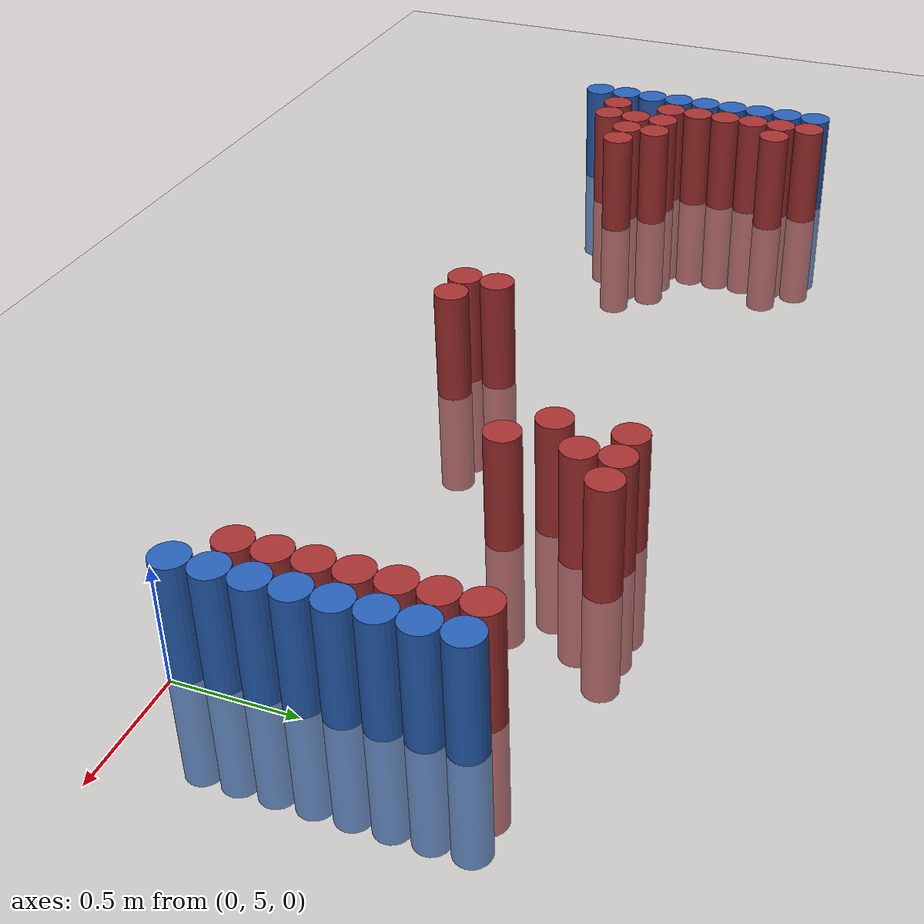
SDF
<sdf version="1.6">
 <world name="default">
  <model name="ground_plane">
   <static>1</static>
   <link name="link">
    <collision name="collision">
     <geometry><plane><normal>0 0 1</normal><size>100 100</size></plane></geometry>
     <surface><friction><ode><mu>100</mu><mu2>50</mu2></ode></friction></surface>
    </collision>
    <visual name="visual">
     <cast_shadows>0</cast_shadows>
     <geometry><plane><normal>0 0 1</normal><size>100 100</size></plane></geometry>
     <material>
      <script><uri>file://media/materials/scripts/gazebo.material</uri><name>Gazebo/Grey</name></script>
     </material>
    </visual>
   </link>
  </model>
  <model name="unit_cylinder_94">
   <static>1</static>
   <pose>-0.075000 5.025000 0.000000 0.000000 0.000000 0.000000</pose>
   <link name="link">
    <inertial>
     <mass>1</mass>
     <inertia><ixx>0.145833</ixx><ixy>0</ixy><ixz>0</ixz><iyy>0.145833</iyy><iyz>0</iyz><izz>0.125</izz></inertia>
    </inertial>
    <collision name="collision">
     <geometry><cylinder><radius>0.075000</radius><length>1</length></cylinder></geometry>
    </collision>
    <visual name="visual">
     <geometry><cylinder><radius>0.075000</radius><length>1</length></cylinder></geometry>
     <material>
      <ambient>0.152000 0.379000 0.720000 1</ambient>
      <diffuse>0.152000 0.379000 0.720000 1</diffuse>
     </material>
     <material>
      <script><name>Gazebo/Grey</name><uri>file://media/materials/scripts/gazebo.material</uri></script>
     </material>
    </visual>
   </link>
  </model>
  <model name="unit_cylinder_95">
   <static>1</static>
   <pose>-4.425000 5.025000 0.000000 0.000000 0.000000 0.000000</pose>
   <link name="link">
    <inertial>
     <mass>1</mass>
     <inertia><ixx>0.145833</ixx><ixy>0</ixy><ixz>0</ixz><iyy>0.145833</iyy><iyz>0</iyz><izz>0.125</izz></inertia>
    </inertial>
    <collision name="collision">
     <geometry><cylinder><radius>0.075000</radius><length>1</length></cylinder></geometry>
    </collision>
    <visual name="visual">
     <geometry><cylinder><radius>0.075000</radius><length>1</length></cylinder></geometry>
     <material>
      <ambient>0.152000 0.379000 0.720000 1</ambient>
      <diffuse>0.152000 0.379000 0.720000 1</diffuse>
     </material>
     <material>
      <script><name>Gazebo/Grey</name><uri>file://media/materials/scripts/gazebo.material</uri></script>
     </material>
    </visual>
   </link>
  </model>
  <model name="unit_cylinder_96">
   <static>1</static>
   <pose>-4.425000 5.175000 0.000000 0.000000 0.000000 0.000000</pose>
   <link name="link">
    <inertial>
     <mass>1</mass>
     <inertia><ixx>0.145833</ixx><ixy>0</ixy><ixz>0</ixz><iyy>0.145833</iyy><iyz>0</iyz><izz>0.125</izz></inertia>
    </inertial>
    <collision name="collision">
     <geometry><cylinder><radius>0.075000</radius><length>1</length></cylinder></geometry>
    </collision>
    <visual name="visual">
     <geometry><cylinder><radius>0.075000</radius><length>1</length></cylinder></geometry>
     <material>
      <ambient>0.152000 0.379000 0.720000 1</ambient>
      <diffuse>0.152000 0.379000 0.720000 1</diffuse>
     </material>
     <material>
      <script><name>Gazebo/Grey</name><uri>file://media/materials/scripts/gazebo.material</uri></script>
     </material>
    </visual>
   </link>
  </model>
  <model name="unit_cylinder_97">
   <static>1</static>
   <pose>-4.425000 5.325000 0.000000 0.000000 0.000000 0.000000</pose>
   <link name="link">
    <inertial>
     <mass>1</mass>
     <inertia><ixx>0.145833</ixx><ixy>0</ixy><ixz>0</ixz><iyy>0.145833</iyy><iyz>0</iyz><izz>0.125</izz></inertia>
    </inertial>
    <collision name="collision">
     <geometry><cylinder><radius>0.075000</radius><length>1</length></cylinder></geometry>
    </collision>
    <visual name="visual">
     <geometry><cylinder><radius>0.075000</radius><length>1</length></cylinder></geometry>
     <material>
      <ambient>0.152000 0.379000 0.720000 1</ambient>
      <diffuse>0.152000 0.379000 0.720000 1</diffuse>
     </material>
     <material>
      <script><name>Gazebo/Grey</name><uri>file://media/materials/scripts/gazebo.material</uri></script>
     </material>
    </visual>
   </link>
  </model>
  <model name="unit_cylinder_98">
   <static>1</static>
   <pose>-4.425000 5.475000 0.000000 0.000000 0.000000 0.000000</pose>
   <link name="link">
    <inertial>
     <mass>1</mass>
     <inertia><ixx>0.145833</ixx><ixy>0</ixy><ixz>0</ixz><iyy>0.145833</iyy><iyz>0</iyz><izz>0.125</izz></inertia>
    </inertial>
    <collision name="collision">
     <geometry><cylinder><radius>0.075000</radius><length>1</length></cylinder></geometry>
    </collision>
    <visual name="visual">
     <geometry><cylinder><radius>0.075000</radius><length>1</length></cylinder></geometry>
     <material>
      <ambient>0.152000 0.379000 0.720000 1</ambient>
      <diffuse>0.152000 0.379000 0.720000 1</diffuse>
     </material>
     <material>
      <script><name>Gazebo/Grey</name><uri>file://media/materials/scripts/gazebo.material</uri></script>
     </material>
    </visual>
   </link>
  </model>
  <model name="unit_cylinder_99">
   <static>1</static>
   <pose>-4.425000 5.625000 0.000000 0.000000 0.000000 0.000000</pose>
   <link name="link">
    <inertial>
     <mass>1</mass>
     <inertia><ixx>0.145833</ixx><ixy>0</ixy><ixz>0</ixz><iyy>0.145833</iyy><iyz>0</iyz><izz>0.125</izz></inertia>
    </inertial>
    <collision name="collision">
     <geometry><cylinder><radius>0.075000</radius><length>1</length></cylinder></geometry>
    </collision>
    <visual name="visual">
     <geometry><cylinder><radius>0.075000</radius><length>1</length></cylinder></geometry>
     <material>
      <ambient>0.152000 0.379000 0.720000 1</ambient>
      <diffuse>0.152000 0.379000 0.720000 1</diffuse>
     </material>
     <material>
      <script><name>Gazebo/Grey</name><uri>file://media/materials/scripts/gazebo.material</uri></script>
     </material>
    </visual>
   </link>
  </model>
  <model name="unit_cylinder_100">
   <static>1</static>
   <pose>-4.425000 5.775000 0.000000 0.000000 0.000000 0.000000</pose>
   <link name="link">
    <inertial>
     <mass>1</mass>
     <inertia><ixx>0.145833</ixx><ixy>0</ixy><ixz>0</ixz><iyy>0.145833</iyy><iyz>0</iyz><izz>0.125</izz></inertia>
    </inertial>
    <collision name="collision">
     <geometry><cylinder><radius>0.075000</radius><length>1</length></cylinder></geometry>
    </collision>
    <visual name="visual">
     <geometry><cylinder><radius>0.075000</radius><length>1</length></cylinder></geometry>
     <material>
      <ambient>0.152000 0.379000 0.720000 1</ambient>
      <diffuse>0.152000 0.379000 0.720000 1</diffuse>
     </material>
     <material>
      <script><name>Gazebo/Grey</name><uri>file://media/materials/scripts/gazebo.material</uri></script>
     </material>
    </visual>
   </link>
  </model>
  <model name="unit_cylinder_101">
   <static>1</static>
   <pose>-4.425000 5.925000 0.000000 0.000000 0.000000 0.000000</pose>
   <link name="link">
    <inertial>
     <mass>1</mass>
     <inertia><ixx>0.145833</ixx><ixy>0</ixy><ixz>0</ixz><iyy>0.145833</iyy><iyz>0</iyz><izz>0.125</izz></inertia>
    </inertial>
    <collision name="collision">
     <geometry><cylinder><radius>0.075000</radius><length>1</length></cylinder></geometry>
    </collision>
    <visual name="visual">
     <geometry><cylinder><radius>0.075000</radius><length>1</length></cylinder></geometry>
     <material>
      <ambient>0.152000 0.379000 0.720000 1</ambient>
      <diffuse>0.152000 0.379000 0.720000 1</diffuse>
     </material>
     <material>
      <script><name>Gazebo/Grey</name><uri>file://media/materials/scripts/gazebo.material</uri></script>
     </material>
    </visual>
   </link>
  </model>
  <model name="unit_cylinder_102">
   <static>1</static>
   <pose>-4.425000 6.075000 0.000000 0.000000 0.000000 0.000000</pose>
   <link name="link">
    <inertial>
     <mass>1</mass>
     <inertia><ixx>0.145833</ixx><ixy>0</ixy><ixz>0</ixz><iyy>0.145833</iyy><iyz>0</iyz><izz>0.125</izz></inertia>
    </inertial>
    <collision name="collision">
     <geometry><cylinder><radius>0.075000</radius><length>1</length></cylinder></geometry>
    </collision>
    <visual name="visual">
     <geometry><cylinder><radius>0.075000</radius><length>1</length></cylinder></geometry>
     <material>
      <ambient>0.152000 0.379000 0.720000 1</ambient>
      <diffuse>0.152000 0.379000 0.720000 1</diffuse>
     </material>
     <material>
      <script><name>Gazebo/Grey</name><uri>file://media/materials/scripts/gazebo.material</uri></script>
     </material>
    </visual>
   </link>
  </model>
  <model name="unit_cylinder_103">
   <static>1</static>
   <pose>-4.425000 6.225000 0.000000 0.000000 0.000000 0.000000</pose>
   <link name="link">
    <inertial>
     <mass>1</mass>
     <inertia><ixx>0.145833</ixx><ixy>0</ixy><ixz>0</ixz><iyy>0.145833</iyy><iyz>0</iyz><izz>0.125</izz></inertia>
    </inertial>
    <collision name="collision">
     <geometry><cylinder><radius>0.075000</radius><length>1</length></cylinder></geometry>
    </collision>
    <visual name="visual">
     <geometry><cylinder><radius>0.075000</radius><length>1</length></cylinder></geometry>
     <material>
      <ambient>0.152000 0.379000 0.720000 1</ambient>
      <diffuse>0.152000 0.379000 0.720000 1</diffuse>
     </material>
     <material>
      <script><name>Gazebo/Grey</name><uri>file://media/materials/scripts/gazebo.material</uri></script>
     </material>
    </visual>
   </link>
  </model>
  <model name="unit_cylinder_126">
   <static>1</static>
   <pose>-4.275000 5.175000 0.000000 0.000000 0.000000 0.000000</pose>
   <link name="link">
    <inertial>
     <mass>1</mass>
     <inertia><ixx>0.145833</ixx><ixy>0</ixy><ixz>0</ixz><iyy>0.145833</iyy><iyz>0</iyz><izz>0.125</izz></inertia>
    </inertial>
    <collision name="collision">
     <geometry><cylinder><radius>0.075000</radius><length>1</length></cylinder></geometry>
    </collision>
    <visual name="visual">
     <geometry><cylinder><radius>0.075000</radius><length>1</length></cylinder></geometry>
     <material>
      <ambient>0.648000 0.192000 0.192000 1</ambient>
      <diffuse>0.648000 0.192000 0.192000 1</diffuse>
     </material>
     <material>
      <script><name>Gazebo/Grey</name><uri>file://media/materials/scripts/gazebo.material</uri></script>
     </material>
    </visual>
   </link>
  </model>
  <model name="unit_cylinder_127">
   <static>1</static>
   <pose>-4.275000 5.475000 0.000000 0.000000 0.000000 0.000000</pose>
   <link name="link">
    <inertial>
     <mass>1</mass>
     <inertia><ixx>0.145833</ixx><ixy>0</ixy><ixz>0</ixz><iyy>0.145833</iyy><iyz>0</iyz><izz>0.125</izz></inertia>
    </inertial>
    <collision name="collision">
     <geometry><cylinder><radius>0.075000</radius><length>1</length></cylinder></geometry>
    </collision>
    <visual name="visual">
     <geometry><cylinder><radius>0.075000</radius><length>1</length></cylinder></geometry>
     <material>
      <ambient>0.648000 0.192000 0.192000 1</ambient>
      <diffuse>0.648000 0.192000 0.192000 1</diffuse>
     </material>
     <material>
      <script><name>Gazebo/Grey</name><uri>file://media/materials/scripts/gazebo.material</uri></script>
     </material>
    </visual>
   </link>
  </model>
  <model name="unit_cylinder_128">
   <static>1</static>
   <pose>-4.275000 5.625000 0.000000 0.000000 0.000000 0.000000</pose>
   <link name="link">
    <inertial>
     <mass>1</mass>
     <inertia><ixx>0.145833</ixx><ixy>0</ixy><ixz>0</ixz><iyy>0.145833</iyy><iyz>0</iyz><izz>0.125</izz></inertia>
    </inertial>
    <collision name="collision">
     <geometry><cylinder><radius>0.075000</radius><length>1</length></cylinder></geometry>
    </collision>
    <visual name="visual">
     <geometry><cylinder><radius>0.075000</radius><length>1</length></cylinder></geometry>
     <material>
      <ambient>0.648000 0.192000 0.192000 1</ambient>
      <diffuse>0.648000 0.192000 0.192000 1</diffuse>
     </material>
     <material>
      <script><name>Gazebo/Grey</name><uri>file://media/materials/scripts/gazebo.material</uri></script>
     </material>
    </visual>
   </link>
  </model>
  <model name="unit_cylinder_129">
   <static>1</static>
   <pose>-4.275000 5.775000 0.000000 0.000000 0.000000 0.000000</pose>
   <link name="link">
    <inertial>
     <mass>1</mass>
     <inertia><ixx>0.145833</ixx><ixy>0</ixy><ixz>0</ixz><iyy>0.145833</iyy><iyz>0</iyz><izz>0.125</izz></inertia>
    </inertial>
    <collision name="collision">
     <geometry><cylinder><radius>0.075000</radius><length>1</length></cylinder></geometry>
    </collision>
    <visual name="visual">
     <geometry><cylinder><radius>0.075000</radius><length>1</length></cylinder></geometry>
     <material>
      <ambient>0.648000 0.192000 0.192000 1</ambient>
      <diffuse>0.648000 0.192000 0.192000 1</diffuse>
     </material>
     <material>
      <script><name>Gazebo/Grey</name><uri>file://media/materials/scripts/gazebo.material</uri></script>
     </material>
    </visual>
   </link>
  </model>
  <model name="unit_cylinder_130">
   <static>1</static>
   <pose>-4.275000 5.925000 0.000000 0.000000 0.000000 0.000000</pose>
   <link name="link">
    <inertial>
     <mass>1</mass>
     <inertia><ixx>0.145833</ixx><ixy>0</ixy><ixz>0</ixz><iyy>0.145833</iyy><iyz>0</iyz><izz>0.125</izz></inertia>
    </inertial>
    <collision name="collision">
     <geometry><cylinder><radius>0.075000</radius><length>1</length></cylinder></geometry>
    </collision>
    <visual name="visual">
     <geometry><cylinder><radius>0.075000</radius><length>1</length></cylinder></geometry>
     <material>
      <ambient>0.648000 0.192000 0.192000 1</ambient>
      <diffuse>0.648000 0.192000 0.192000 1</diffuse>
     </material>
     <material>
      <script><name>Gazebo/Grey</name><uri>file://media/materials/scripts/gazebo.material</uri></script>
     </material>
    </visual>
   </link>
  </model>
  <model name="unit_cylinder_131">
   <static>1</static>
   <pose>-4.275000 6.075000 0.000000 0.000000 0.000000 0.000000</pose>
   <link name="link">
    <inertial>
     <mass>1</mass>
     <inertia><ixx>0.145833</ixx><ixy>0</ixy><ixz>0</ixz><iyy>0.145833</iyy><iyz>0</iyz><izz>0.125</izz></inertia>
    </inertial>
    <collision name="collision">
     <geometry><cylinder><radius>0.075000</radius><length>1</length></cylinder></geometry>
    </collision>
    <visual name="visual">
     <geometry><cylinder><radius>0.075000</radius><length>1</length></cylinder></geometry>
     <material>
      <ambient>0.648000 0.192000 0.192000 1</ambient>
      <diffuse>0.648000 0.192000 0.192000 1</diffuse>
     </material>
     <material>
      <script><name>Gazebo/Grey</name><uri>file://media/materials/scripts/gazebo.material</uri></script>
     </material>
    </visual>
   </link>
  </model>
  <model name="unit_cylinder_132">
   <static>1</static>
   <pose>-4.275000 6.225000 0.000000 0.000000 0.000000 0.000000</pose>
   <link name="link">
    <inertial>
     <mass>1</mass>
     <inertia><ixx>0.145833</ixx><ixy>0</ixy><ixz>0</ixz><iyy>0.145833</iyy><iyz>0</iyz><izz>0.125</izz></inertia>
    </inertial>
    <collision name="collision">
     <geometry><cylinder><radius>0.075000</radius><length>1</length></cylinder></geometry>
    </collision>
    <visual name="visual">
     <geometry><cylinder><radius>0.075000</radius><length>1</length></cylinder></geometry>
     <material>
      <ambient>0.648000 0.192000 0.192000 1</ambient>
      <diffuse>0.648000 0.192000 0.192000 1</diffuse>
     </material>
     <material>
      <script><name>Gazebo/Grey</name><uri>file://media/materials/scripts/gazebo.material</uri></script>
     </material>
    </visual>
   </link>
  </model>
  <model name="unit_cylinder_148">
   <static>1</static>
   <pose>-4.125000 5.175000 0.000000 0.000000 0.000000 0.000000</pose>
   <link name="link">
    <inertial>
     <mass>1</mass>
     <inertia><ixx>0.145833</ixx><ixy>0</ixy><ixz>0</ixz><iyy>0.145833</iyy><iyz>0</iyz><izz>0.125</izz></inertia>
    </inertial>
    <collision name="collision">
     <geometry><cylinder><radius>0.075000</radius><length>1</length></cylinder></geometry>
    </collision>
    <visual name="visual">
     <geometry><cylinder><radius>0.075000</radius><length>1</length></cylinder></geometry>
     <material>
      <ambient>0.648000 0.192000 0.192000 1</ambient>
      <diffuse>0.648000 0.192000 0.192000 1</diffuse>
     </material>
     <material>
      <script><name>Gazebo/Grey</name><uri>file://media/materials/scripts/gazebo.material</uri></script>
     </material>
    </visual>
   </link>
  </model>
  <model name="unit_cylinder_149">
   <static>1</static>
   <pose>-4.125000 5.325000 0.000000 0.000000 0.000000 0.000000</pose>
   <link name="link">
    <inertial>
     <mass>1</mass>
     <inertia><ixx>0.145833</ixx><ixy>0</ixy><ixz>0</ixz><iyy>0.145833</iyy><iyz>0</iyz><izz>0.125</izz></inertia>
    </inertial>
    <collision name="collision">
     <geometry><cylinder><radius>0.075000</radius><length>1</length></cylinder></geometry>
    </collision>
    <visual name="visual">
     <geometry><cylinder><radius>0.075000</radius><length>1</length></cylinder></geometry>
     <material>
      <ambient>0.648000 0.192000 0.192000 1</ambient>
      <diffuse>0.648000 0.192000 0.192000 1</diffuse>
     </material>
     <material>
      <script><name>Gazebo/Grey</name><uri>file://media/materials/scripts/gazebo.material</uri></script>
     </material>
    </visual>
   </link>
  </model>
  <model name="unit_cylinder_150">
   <static>1</static>
   <pose>-4.125000 5.475000 0.000000 0.000000 0.000000 0.000000</pose>
   <link name="link">
    <inertial>
     <mass>1</mass>
     <inertia><ixx>0.145833</ixx><ixy>0</ixy><ixz>0</ixz><iyy>0.145833</iyy><iyz>0</iyz><izz>0.125</izz></inertia>
    </inertial>
    <collision name="collision">
     <geometry><cylinder><radius>0.075000</radius><length>1</length></cylinder></geometry>
    </collision>
    <visual name="visual">
     <geometry><cylinder><radius>0.075000</radius><length>1</length></cylinder></geometry>
     <material>
      <ambient>0.648000 0.192000 0.192000 1</ambient>
      <diffuse>0.648000 0.192000 0.192000 1</diffuse>
     </material>
     <material>
      <script><name>Gazebo/Grey</name><uri>file://media/materials/scripts/gazebo.material</uri></script>
     </material>
    </visual>
   </link>
  </model>
  <model name="unit_cylinder_151">
   <static>1</static>
   <pose>-4.125000 6.075000 0.000000 0.000000 0.000000 0.000000</pose>
   <link name="link">
    <inertial>
     <mass>1</mass>
     <inertia><ixx>0.145833</ixx><ixy>0</ixy><ixz>0</ixz><iyy>0.145833</iyy><iyz>0</iyz><izz>0.125</izz></inertia>
    </inertial>
    <collision name="collision">
     <geometry><cylinder><radius>0.075000</radius><length>1</length></cylinder></geometry>
    </collision>
    <visual name="visual">
     <geometry><cylinder><radius>0.075000</radius><length>1</length></cylinder></geometry>
     <material>
      <ambient>0.648000 0.192000 0.192000 1</ambient>
      <diffuse>0.648000 0.192000 0.192000 1</diffuse>
     </material>
     <material>
      <script><name>Gazebo/Grey</name><uri>file://media/materials/scripts/gazebo.material</uri></script>
     </material>
    </visual>
   </link>
  </model>
  <model name="unit_cylinder_159">
   <static>1</static>
   <pose>-3.975000 5.325000 0.000000 0.000000 0.000000 0.000000</pose>
   <link name="link">
    <inertial>
     <mass>1</mass>
     <inertia><ixx>0.145833</ixx><ixy>0</ixy><ixz>0</ixz><iyy>0.145833</iyy><iyz>0</iyz><izz>0.125</izz></inertia>
    </inertial>
    <collision name="collision">
     <geometry><cylinder><radius>0.075000</radius><length>1</length></cylinder></geometry>
    </collision>
    <visual name="visual">
     <geometry><cylinder><radius>0.075000</radius><length>1</length></cylinder></geometry>
     <material>
      <ambient>0.648000 0.192000 0.192000 1</ambient>
      <diffuse>0.648000 0.192000 0.192000 1</diffuse>
     </material>
     <material>
      <script><name>Gazebo/Grey</name><uri>file://media/materials/scripts/gazebo.material</uri></script>
     </material>
    </visual>
   </link>
  </model>
  <model name="unit_cylinder_160">
   <static>1</static>
   <pose>-3.975000 5.475000 0.000000 0.000000 0.000000 0.000000</pose>
   <link name="link">
    <inertial>
     <mass>1</mass>
     <inertia><ixx>0.145833</ixx><ixy>0</ixy><ixz>0</ixz><iyy>0.145833</iyy><iyz>0</iyz><izz>0.125</izz></inertia>
    </inertial>
    <collision name="collision">
     <geometry><cylinder><radius>0.075000</radius><length>1</length></cylinder></geometry>
    </collision>
    <visual name="visual">
     <geometry><cylinder><radius>0.075000</radius><length>1</length></cylinder></geometry>
     <material>
      <ambient>0.648000 0.192000 0.192000 1</ambient>
      <diffuse>0.648000 0.192000 0.192000 1</diffuse>
     </material>
     <material>
      <script><name>Gazebo/Grey</name><uri>file://media/materials/scripts/gazebo.material</uri></script>
     </material>
    </visual>
   </link>
  </model>
  <model name="unit_cylinder_164">
   <static>1</static>
   <pose>-3.825000 5.325000 0.000000 0.000000 0.000000 0.000000</pose>
   <link name="link">
    <inertial>
     <mass>1</mass>
     <inertia><ixx>0.145833</ixx><ixy>0</ixy><ixz>0</ixz><iyy>0.145833</iyy><iyz>0</iyz><izz>0.125</izz></inertia>
    </inertial>
    <collision name="collision">
     <geometry><cylinder><radius>0.075000</radius><length>1</length></cylinder></geometry>
    </collision>
    <visual name="visual">
     <geometry><cylinder><radius>0.075000</radius><length>1</length></cylinder></geometry>
     <material>
      <ambient>0.648000 0.192000 0.192000 1</ambient>
      <diffuse>0.648000 0.192000 0.192000 1</diffuse>
     </material>
     <material>
      <script><name>Gazebo/Grey</name><uri>file://media/materials/scripts/gazebo.material</uri></script>
     </material>
    </visual>
   </link>
  </model>
  <model name="unit_cylinder_183">
   <static>1</static>
   <pose>-2.175000 5.175000 0.000000 0.000000 0.000000 0.000000</pose>
   <link name="link">
    <inertial>
     <mass>1</mass>
     <inertia><ixx>0.145833</ixx><ixy>0</ixy><ixz>0</ixz><iyy>0.145833</iyy><iyz>0</iyz><izz>0.125</izz></inertia>
    </inertial>
    <collision name="collision">
     <geometry><cylinder><radius>0.075000</radius><length>1</length></cylinder></geometry>
    </collision>
    <visual name="visual">
     <geometry><cylinder><radius>0.075000</radius><length>1</length></cylinder></geometry>
     <material>
      <ambient>0.648000 0.192000 0.192000 1</ambient>
      <diffuse>0.648000 0.192000 0.192000 1</diffuse>
     </material>
     <material>
      <script><name>Gazebo/Grey</name><uri>file://media/materials/scripts/gazebo.material</uri></script>
     </material>
    </visual>
   </link>
  </model>
  <model name="unit_cylinder_184">
   <static>1</static>
   <pose>-2.175000 5.325000 0.000000 0.000000 0.000000 0.000000</pose>
   <link name="link">
    <inertial>
     <mass>1</mass>
     <inertia><ixx>0.145833</ixx><ixy>0</ixy><ixz>0</ixz><iyy>0.145833</iyy><iyz>0</iyz><izz>0.125</izz></inertia>
    </inertial>
    <collision name="collision">
     <geometry><cylinder><radius>0.075000</radius><length>1</length></cylinder></geometry>
    </collision>
    <visual name="visual">
     <geometry><cylinder><radius>0.075000</radius><length>1</length></cylinder></geometry>
     <material>
      <ambient>0.648000 0.192000 0.192000 1</ambient>
      <diffuse>0.648000 0.192000 0.192000 1</diffuse>
     </material>
     <material>
      <script><name>Gazebo/Grey</name><uri>file://media/materials/scripts/gazebo.material</uri></script>
     </material>
    </visual>
   </link>
  </model>
  <model name="unit_cylinder_185">
   <static>1</static>
   <pose>-2.025000 5.175000 0.000000 0.000000 0.000000 0.000000</pose>
   <link name="link">
    <inertial>
     <mass>1</mass>
     <inertia><ixx>0.145833</ixx><ixy>0</ixy><ixz>0</ixz><iyy>0.145833</iyy><iyz>0</iyz><izz>0.125</izz></inertia>
    </inertial>
    <collision name="collision">
     <geometry><cylinder><radius>0.075000</radius><length>1</length></cylinder></geometry>
    </collision>
    <visual name="visual">
     <geometry><cylinder><radius>0.075000</radius><length>1</length></cylinder></geometry>
     <material>
      <ambient>0.648000 0.192000 0.192000 1</ambient>
      <diffuse>0.648000 0.192000 0.192000 1</diffuse>
     </material>
     <material>
      <script><name>Gazebo/Grey</name><uri>file://media/materials/scripts/gazebo.material</uri></script>
     </material>
    </visual>
   </link>
  </model>
  <model name="unit_cylinder_198">
   <static>1</static>
   <pose>-1.275000 5.925000 0.000000 0.000000 0.000000 0.000000</pose>
   <link name="link">
    <inertial>
     <mass>1</mass>
     <inertia><ixx>0.145833</ixx><ixy>0</ixy><ixz>0</ixz><iyy>0.145833</iyy><iyz>0</iyz><izz>0.125</izz></inertia>
    </inertial>
    <collision name="collision">
     <geometry><cylinder><radius>0.075000</radius><length>1</length></cylinder></geometry>
    </collision>
    <visual name="visual">
     <geometry><cylinder><radius>0.075000</radius><length>1</length></cylinder></geometry>
     <material>
      <ambient>0.648000 0.192000 0.192000 1</ambient>
      <diffuse>0.648000 0.192000 0.192000 1</diffuse>
     </material>
     <material>
      <script><name>Gazebo/Grey</name><uri>file://media/materials/scripts/gazebo.material</uri></script>
     </material>
    </visual>
   </link>
  </model>
  <model name="unit_cylinder_199">
   <static>1</static>
   <pose>-1.275000 6.225000 0.000000 0.000000 0.000000 0.000000</pose>
   <link name="link">
    <inertial>
     <mass>1</mass>
     <inertia><ixx>0.145833</ixx><ixy>0</ixy><ixz>0</ixz><iyy>0.145833</iyy><iyz>0</iyz><izz>0.125</izz></inertia>
    </inertial>
    <collision name="collision">
     <geometry><cylinder><radius>0.075000</radius><length>1</length></cylinder></geometry>
    </collision>
    <visual name="visual">
     <geometry><cylinder><radius>0.075000</radius><length>1</length></cylinder></geometry>
     <material>
      <ambient>0.648000 0.192000 0.192000 1</ambient>
      <diffuse>0.648000 0.192000 0.192000 1</diffuse>
     </material>
     <material>
      <script><name>Gazebo/Grey</name><uri>file://media/materials/scripts/gazebo.material</uri></script>
     </material>
    </visual>
   </link>
  </model>
  <model name="unit_cylinder_202">
   <static>1</static>
   <pose>-1.125000 5.775000 0.000000 0.000000 0.000000 0.000000</pose>
   <link name="link">
    <inertial>
     <mass>1</mass>
     <inertia><ixx>0.145833</ixx><ixy>0</ixy><ixz>0</ixz><iyy>0.145833</iyy><iyz>0</iyz><izz>0.125</izz></inertia>
    </inertial>
    <collision name="collision">
     <geometry><cylinder><radius>0.075000</radius><length>1</length></cylinder></geometry>
    </collision>
    <visual name="visual">
     <geometry><cylinder><radius>0.075000</radius><length>1</length></cylinder></geometry>
     <material>
      <ambient>0.648000 0.192000 0.192000 1</ambient>
      <diffuse>0.648000 0.192000 0.192000 1</diffuse>
     </material>
     <material>
      <script><name>Gazebo/Grey</name><uri>file://media/materials/scripts/gazebo.material</uri></script>
     </material>
    </visual>
   </link>
  </model>
  <model name="unit_cylinder_203">
   <static>1</static>
   <pose>-1.125000 6.075000 0.000000 0.000000 0.000000 0.000000</pose>
   <link name="link">
    <inertial>
     <mass>1</mass>
     <inertia><ixx>0.145833</ixx><ixy>0</ixy><ixz>0</ixz><iyy>0.145833</iyy><iyz>0</iyz><izz>0.125</izz></inertia>
    </inertial>
    <collision name="collision">
     <geometry><cylinder><radius>0.075000</radius><length>1</length></cylinder></geometry>
    </collision>
    <visual name="visual">
     <geometry><cylinder><radius>0.075000</radius><length>1</length></cylinder></geometry>
     <material>
      <ambient>0.648000 0.192000 0.192000 1</ambient>
      <diffuse>0.648000 0.192000 0.192000 1</diffuse>
     </material>
     <material>
      <script><name>Gazebo/Grey</name><uri>file://media/materials/scripts/gazebo.material</uri></script>
     </material>
    </visual>
   </link>
  </model>
  <model name="unit_cylinder_204">
   <static>1</static>
   <pose>-1.125000 6.225000 0.000000 0.000000 0.000000 0.000000</pose>
   <link name="link">
    <inertial>
     <mass>1</mass>
     <inertia><ixx>0.145833</ixx><ixy>0</ixy><ixz>0</ixz><iyy>0.145833</iyy><iyz>0</iyz><izz>0.125</izz></inertia>
    </inertial>
    <collision name="collision">
     <geometry><cylinder><radius>0.075000</radius><length>1</length></cylinder></geometry>
    </collision>
    <visual name="visual">
     <geometry><cylinder><radius>0.075000</radius><length>1</length></cylinder></geometry>
     <material>
      <ambient>0.648000 0.192000 0.192000 1</ambient>
      <diffuse>0.648000 0.192000 0.192000 1</diffuse>
     </material>
     <material>
      <script><name>Gazebo/Grey</name><uri>file://media/materials/scripts/gazebo.material</uri></script>
     </material>
    </visual>
   </link>
  </model>
  <model name="unit_cylinder_209">
   <static>1</static>
   <pose>-0.975000 6.225000 0.000000 0.000000 0.000000 0.000000</pose>
   <link name="link">
    <inertial>
     <mass>1</mass>
     <inertia><ixx>0.145833</ixx><ixy>0</ixy><ixz>0</ixz><iyy>0.145833</iyy><iyz>0</iyz><izz>0.125</izz></inertia>
    </inertial>
    <collision name="collision">
     <geometry><cylinder><radius>0.075000</radius><length>1</length></cylinder></geometry>
    </collision>
    <visual name="visual">
     <geometry><cylinder><radius>0.075000</radius><length>1</length></cylinder></geometry>
     <material>
      <ambient>0.648000 0.192000 0.192000 1</ambient>
      <diffuse>0.648000 0.192000 0.192000 1</diffuse>
     </material>
     <material>
      <script><name>Gazebo/Grey</name><uri>file://media/materials/scripts/gazebo.material</uri></script>
     </material>
    </visual>
   </link>
  </model>
  <model name="unit_cylinder_235">
   <static>1</static>
   <pose>-0.225000 5.175000 0.000000 0.000000 0.000000 0.000000</pose>
   <link name="link">
    <inertial>
     <mass>1</mass>
     <inertia><ixx>0.145833</ixx><ixy>0</ixy><ixz>0</ixz><iyy>0.145833</iyy><iyz>0</iyz><izz>0.125</izz></inertia>
    </inertial>
    <collision name="collision">
     <geometry><cylinder><radius>0.075000</radius><length>1</length></cylinder></geometry>
    </collision>
    <visual name="visual">
     <geometry><cylinder><radius>0.075000</radius><length>1</length></cylinder></geometry>
     <material>
      <ambient>0.648000 0.192000 0.192000 1</ambient>
      <diffuse>0.648000 0.192000 0.192000 1</diffuse>
     </material>
     <material>
      <script><name>Gazebo/Grey</name><uri>file://media/materials/scripts/gazebo.material</uri></script>
     </material>
    </visual>
   </link>
  </model>
  <model name="unit_cylinder_236">
   <static>1</static>
   <pose>-0.225000 5.325000 0.000000 0.000000 0.000000 0.000000</pose>
   <link name="link">
    <inertial>
     <mass>1</mass>
     <inertia><ixx>0.145833</ixx><ixy>0</ixy><ixz>0</ixz><iyy>0.145833</iyy><iyz>0</iyz><izz>0.125</izz></inertia>
    </inertial>
    <collision name="collision">
     <geometry><cylinder><radius>0.075000</radius><length>1</length></cylinder></geometry>
    </collision>
    <visual name="visual">
     <geometry><cylinder><radius>0.075000</radius><length>1</length></cylinder></geometry>
     <material>
      <ambient>0.648000 0.192000 0.192000 1</ambient>
      <diffuse>0.648000 0.192000 0.192000 1</diffuse>
     </material>
     <material>
      <script><name>Gazebo/Grey</name><uri>file://media/materials/scripts/gazebo.material</uri></script>
     </material>
    </visual>
   </link>
  </model>
  <model name="unit_cylinder_237">
   <static>1</static>
   <pose>-0.225000 5.475000 0.000000 0.000000 0.000000 0.000000</pose>
   <link name="link">
    <inertial>
     <mass>1</mass>
     <inertia><ixx>0.145833</ixx><ixy>0</ixy><ixz>0</ixz><iyy>0.145833</iyy><iyz>0</iyz><izz>0.125</izz></inertia>
    </inertial>
    <collision name="collision">
     <geometry><cylinder><radius>0.075000</radius><length>1</length></cylinder></geometry>
    </collision>
    <visual name="visual">
     <geometry><cylinder><radius>0.075000</radius><length>1</length></cylinder></geometry>
     <material>
      <ambient>0.648000 0.192000 0.192000 1</ambient>
      <diffuse>0.648000 0.192000 0.192000 1</diffuse>
     </material>
     <material>
      <script><name>Gazebo/Grey</name><uri>file://media/materials/scripts/gazebo.material</uri></script>
     </material>
    </visual>
   </link>
  </model>
  <model name="unit_cylinder_238">
   <static>1</static>
   <pose>-0.225000 5.625000 0.000000 0.000000 0.000000 0.000000</pose>
   <link name="link">
    <inertial>
     <mass>1</mass>
     <inertia><ixx>0.145833</ixx><ixy>0</ixy><ixz>0</ixz><iyy>0.145833</iyy><iyz>0</iyz><izz>0.125</izz></inertia>
    </inertial>
    <collision name="collision">
     <geometry><cylinder><radius>0.075000</radius><length>1</length></cylinder></geometry>
    </collision>
    <visual name="visual">
     <geometry><cylinder><radius>0.075000</radius><length>1</length></cylinder></geometry>
     <material>
      <ambient>0.648000 0.192000 0.192000 1</ambient>
      <diffuse>0.648000 0.192000 0.192000 1</diffuse>
     </material>
     <material>
      <script><name>Gazebo/Grey</name><uri>file://media/materials/scripts/gazebo.material</uri></script>
     </material>
    </visual>
   </link>
  </model>
  <model name="unit_cylinder_239">
   <static>1</static>
   <pose>-0.225000 5.775000 0.000000 0.000000 0.000000 0.000000</pose>
   <link name="link">
    <inertial>
     <mass>1</mass>
     <inertia><ixx>0.145833</ixx><ixy>0</ixy><ixz>0</ixz><iyy>0.145833</iyy><iyz>0</iyz><izz>0.125</izz></inertia>
    </inertial>
    <collision name="collision">
     <geometry><cylinder><radius>0.075000</radius><length>1</length></cylinder></geometry>
    </collision>
    <visual name="visual">
     <geometry><cylinder><radius>0.075000</radius><length>1</length></cylinder></geometry>
     <material>
      <ambient>0.648000 0.192000 0.192000 1</ambient>
      <diffuse>0.648000 0.192000 0.192000 1</diffuse>
     </material>
     <material>
      <script><name>Gazebo/Grey</name><uri>file://media/materials/scripts/gazebo.material</uri></script>
     </material>
    </visual>
   </link>
  </model>
  <model name="unit_cylinder_240">
   <static>1</static>
   <pose>-0.225000 5.925000 0.000000 0.000000 0.000000 0.000000</pose>
   <link name="link">
    <inertial>
     <mass>1</mass>
     <inertia><ixx>0.145833</ixx><ixy>0</ixy><ixz>0</ixz><iyy>0.145833</iyy><iyz>0</iyz><izz>0.125</izz></inertia>
    </inertial>
    <collision name="collision">
     <geometry><cylinder><radius>0.075000</radius><length>1</length></cylinder></geometry>
    </collision>
    <visual name="visual">
     <geometry><cylinder><radius>0.075000</radius><length>1</length></cylinder></geometry>
     <material>
      <ambient>0.648000 0.192000 0.192000 1</ambient>
      <diffuse>0.648000 0.192000 0.192000 1</diffuse>
     </material>
     <material>
      <script><name>Gazebo/Grey</name><uri>file://media/materials/scripts/gazebo.material</uri></script>
     </material>
    </visual>
   </link>
  </model>
  <model name="unit_cylinder_241">
   <static>1</static>
   <pose>-0.225000 6.075000 0.000000 0.000000 0.000000 0.000000</pose>
   <link name="link">
    <inertial>
     <mass>1</mass>
     <inertia><ixx>0.145833</ixx><ixy>0</ixy><ixz>0</ixz><iyy>0.145833</iyy><iyz>0</iyz><izz>0.125</izz></inertia>
    </inertial>
    <collision name="collision">
     <geometry><cylinder><radius>0.075000</radius><length>1</length></cylinder></geometry>
    </collision>
    <visual name="visual">
     <geometry><cylinder><radius>0.075000</radius><length>1</length></cylinder></geometry>
     <material>
      <ambient>0.648000 0.192000 0.192000 1</ambient>
      <diffuse>0.648000 0.192000 0.192000 1</diffuse>
     </material>
     <material>
      <script><name>Gazebo/Grey</name><uri>file://media/materials/scripts/gazebo.material</uri></script>
     </material>
    </visual>
   </link>
  </model>
  <model name="unit_cylinder_251">
   <static>1</static>
   <pose>-0.075000 5.175000 0.000000 0.000000 0.000000 0.000000</pose>
   <link name="link">
    <inertial>
     <mass>1</mass>
     <inertia><ixx>0.145833</ixx><ixy>0</ixy><ixz>0</ixz><iyy>0.145833</iyy><iyz>0</iyz><izz>0.125</izz></inertia>
    </inertial>
    <collision name="collision">
     <geometry><cylinder><radius>0.075000</radius><length>1</length></cylinder></geometry>
    </collision>
    <visual name="visual">
     <geometry><cylinder><radius>0.075000</radius><length>1</length></cylinder></geometry>
     <material>
      <ambient>0.152000 0.379000 0.720000 1</ambient>
      <diffuse>0.152000 0.379000 0.720000 1</diffuse>
     </material>
     <material>
      <script><name>Gazebo/Grey</name><uri>file://media/materials/scripts/gazebo.material</uri></script>
     </material>
    </visual>
   </link>
  </model>
  <model name="unit_cylinder_252">
   <static>1</static>
   <pose>-0.075000 5.325000 0.000000 0.000000 0.000000 0.000000</pose>
   <link name="link">
    <inertial>
     <mass>1</mass>
     <inertia><ixx>0.145833</ixx><ixy>0</ixy><ixz>0</ixz><iyy>0.145833</iyy><iyz>0</iyz><izz>0.125</izz></inertia>
    </inertial>
    <collision name="collision">
     <geometry><cylinder><radius>0.075000</radius><length>1</length></cylinder></geometry>
    </collision>
    <visual name="visual">
     <geometry><cylinder><radius>0.075000</radius><length>1</length></cylinder></geometry>
     <material>
      <ambient>0.152000 0.379000 0.720000 1</ambient>
      <diffuse>0.152000 0.379000 0.720000 1</diffuse>
     </material>
     <material>
      <script><name>Gazebo/Grey</name><uri>file://media/materials/scripts/gazebo.material</uri></script>
     </material>
    </visual>
   </link>
  </model>
  <model name="unit_cylinder_253">
   <static>1</static>
   <pose>-0.075000 5.475000 0.000000 0.000000 0.000000 0.000000</pose>
   <link name="link">
    <inertial>
     <mass>1</mass>
     <inertia><ixx>0.145833</ixx><ixy>0</ixy><ixz>0</ixz><iyy>0.145833</iyy><iyz>0</iyz><izz>0.125</izz></inertia>
    </inertial>
    <collision name="collision">
     <geometry><cylinder><radius>0.075000</radius><length>1</length></cylinder></geometry>
    </collision>
    <visual name="visual">
     <geometry><cylinder><radius>0.075000</radius><length>1</length></cylinder></geometry>
     <material>
      <ambient>0.152000 0.379000 0.720000 1</ambient>
      <diffuse>0.152000 0.379000 0.720000 1</diffuse>
     </material>
     <material>
      <script><name>Gazebo/Grey</name><uri>file://media/materials/scripts/gazebo.material</uri></script>
     </material>
    </visual>
   </link>
  </model>
  <model name="unit_cylinder_254">
   <static>1</static>
   <pose>-0.075000 5.625000 0.000000 0.000000 0.000000 0.000000</pose>
   <link name="link">
    <inertial>
     <mass>1</mass>
     <inertia><ixx>0.145833</ixx><ixy>0</ixy><ixz>0</ixz><iyy>0.145833</iyy><iyz>0</iyz><izz>0.125</izz></inertia>
    </inertial>
    <collision name="collision">
     <geometry><cylinder><radius>0.075000</radius><length>1</length></cylinder></geometry>
    </collision>
    <visual name="visual">
     <geometry><cylinder><radius>0.075000</radius><length>1</length></cylinder></geometry>
     <material>
      <ambient>0.152000 0.379000 0.720000 1</ambient>
      <diffuse>0.152000 0.379000 0.720000 1</diffuse>
     </material>
     <material>
      <script><name>Gazebo/Grey</name><uri>file://media/materials/scripts/gazebo.material</uri></script>
     </material>
    </visual>
   </link>
  </model>
  <model name="unit_cylinder_255">
   <static>1</static>
   <pose>-0.075000 5.775000 0.000000 0.000000 0.000000 0.000000</pose>
   <link name="link">
    <inertial>
     <mass>1</mass>
     <inertia><ixx>0.145833</ixx><ixy>0</ixy><ixz>0</ixz><iyy>0.145833</iyy><iyz>0</iyz><izz>0.125</izz></inertia>
    </inertial>
    <collision name="collision">
     <geometry><cylinder><radius>0.075000</radius><length>1</length></cylinder></geometry>
    </collision>
    <visual name="visual">
     <geometry><cylinder><radius>0.075000</radius><length>1</length></cylinder></geometry>
     <material>
      <ambient>0.152000 0.379000 0.720000 1</ambient>
      <diffuse>0.152000 0.379000 0.720000 1</diffuse>
     </material>
     <material>
      <script><name>Gazebo/Grey</name><uri>file://media/materials/scripts/gazebo.material</uri></script>
     </material>
    </visual>
   </link>
  </model>
  <model name="unit_cylinder_256">
   <static>1</static>
   <pose>-0.075000 5.925000 0.000000 0.000000 0.000000 0.000000</pose>
   <link name="link">
    <inertial>
     <mass>1</mass>
     <inertia><ixx>0.145833</ixx><ixy>0</ixy><ixz>0</ixz><iyy>0.145833</iyy><iyz>0</iyz><izz>0.125</izz></inertia>
    </inertial>
    <collision name="collision">
     <geometry><cylinder><radius>0.075000</radius><length>1</length></cylinder></geometry>
    </collision>
    <visual name="visual">
     <geometry><cylinder><radius>0.075000</radius><length>1</length></cylinder></geometry>
     <material>
      <ambient>0.152000 0.379000 0.720000 1</ambient>
      <diffuse>0.152000 0.379000 0.720000 1</diffuse>
     </material>
     <material>
      <script><name>Gazebo/Grey</name><uri>file://media/materials/scripts/gazebo.material</uri></script>
     </material>
    </visual>
   </link>
  </model>
  <model name="unit_cylinder_257">
   <static>1</static>
   <pose>-0.075000 6.075000 0.000000 0.000000 0.000000 0.000000</pose>
   <link name="link">
    <inertial>
     <mass>1</mass>
     <inertia><ixx>0.145833</ixx><ixy>0</ixy><ixz>0</ixz><iyy>0.145833</iyy><iyz>0</iyz><izz>0.125</izz></inertia>
    </inertial>
    <collision name="collision">
     <geometry><cylinder><radius>0.075000</radius><length>1</length></cylinder></geometry>
    </collision>
    <visual name="visual">
     <geometry><cylinder><radius>0.075000</radius><length>1</length></cylinder></geometry>
     <material>
      <ambient>0.152000 0.379000 0.720000 1</ambient>
      <diffuse>0.152000 0.379000 0.720000 1</diffuse>
     </material>
     <material>
      <script><name>Gazebo/Grey</name><uri>file://media/materials/scripts/gazebo.material</uri></script>
     </material>
    </visual>
   </link>
  </model>
 </world>
</sdf>
